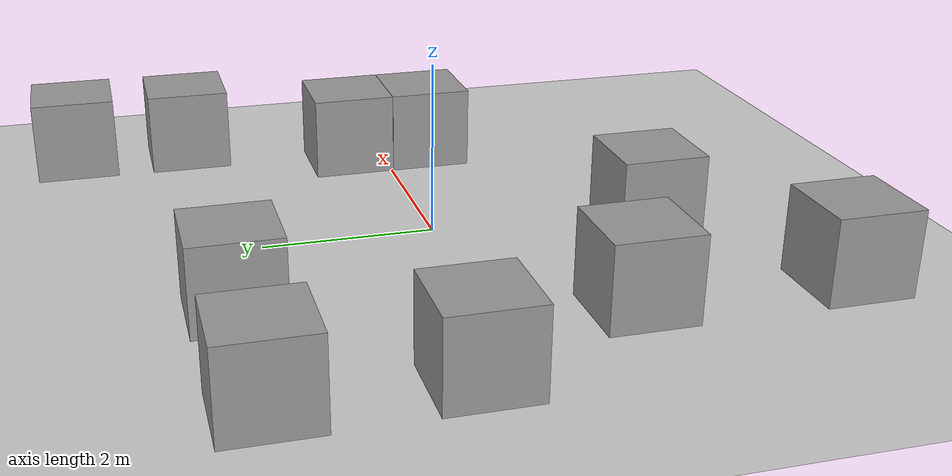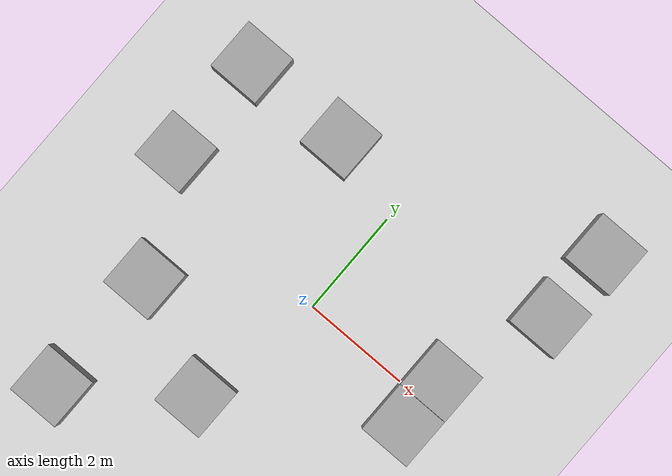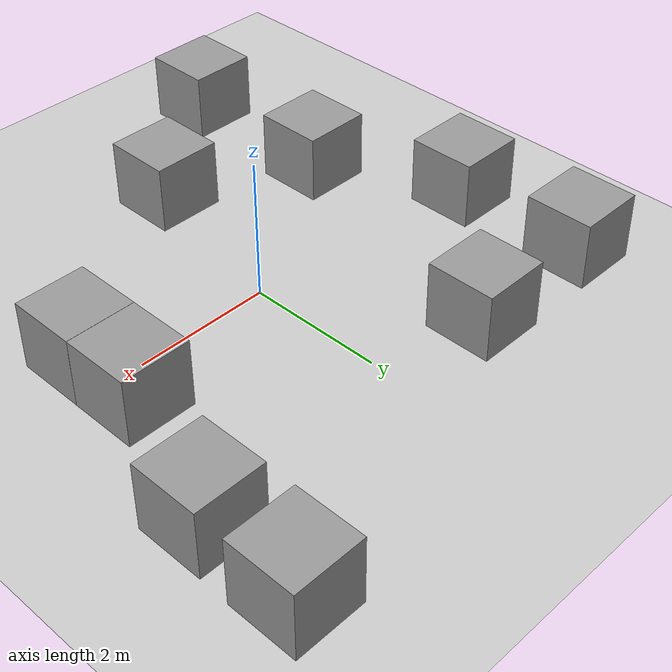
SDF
<sdf version="1.7">
 <world name="default">
  <light name="sun" type="directional">
   <pose>0 0 10 0 -0 0</pose>
   <diffuse>0.8 0.8 0.8 1</diffuse>
   <specular>0.2 0.2 0.2 1</specular>
   <attenuation>
    <range>1000</range>
    <constant>0.9</constant>
    <linear>0.01</linear>
    <quadratic>0.001</quadratic>
   </attenuation>
   <direction>-0.5 0.1 -0.9</direction>
   <spot><inner_angle>0</inner_angle><outer_angle>0</outer_angle><falloff>0</falloff></spot>
  </light>
  <model name="ground_plane">
   <static>1</static>
   <link name="link">
    <collision name="collision">
     <geometry><plane><normal>0 0 1</normal><size>100 100</size></plane></geometry>
     <surface><friction><ode><mu>100</mu><mu2>50</mu2></ode></friction></surface>
    </collision>
    <visual name="visual">
     <cast_shadows>0</cast_shadows>
     <geometry><plane><normal>0 0 1</normal><size>100 100</size></plane></geometry>
     <material>
      <script><uri>file://media/materials/scripts/gazebo.material</uri><name>Gazebo/Grey</name></script>
     </material>
    </visual>
   </link>
  </model>
  <gravity>0 0 -9.8</gravity>
  <magnetic_field>6e-06 2.3e-05 -4.2e-05</magnetic_field>
  <atmosphere type="adiabatic"/>
  <physics name="default_physics" default="0" type="ode">
   <max_step_size>0.001</max_step_size>
   <real_time_factor>1</real_time_factor>
   <real_time_update_rate>1000</real_time_update_rate>
  </physics>
  <scene><ambient>0.4 0.4 0.4 1</ambient><background>0.7 0.7 0.7 1</background><shadows>1</shadows></scene>
  <spherical_coordinates>
   <surface_model>EARTH_WGS84</surface_model>
   <latitude_deg>0</latitude_deg>
   <longitude_deg>0</longitude_deg>
   <elevation>0</elevation>
   <heading_deg>0</heading_deg>
  </spherical_coordinates>
  <model name="unit_box">
   <pose>2.49406 -0.520065 0.499995 1e-05 -0 0</pose>
   <link name="link">
    <inertial>
     <mass>1</mass>
     <inertia>
      <ixx>0.166667</ixx>
      <ixy>0</ixy>
      <ixz>0</ixz>
      <iyy>0.166667</iyy>
      <iyz>0</iyz>
      <izz>0.166667</izz>
     </inertia>
    </inertial>
    <collision name="collision"><geometry><box><size>1 1 1</size></box></geometry></collision>
    <visual name="visual">
     <geometry><box><size>1 1 1</size></box></geometry>
     <material>
      <script><name>Gazebo/Grey</name><uri>file://media/materials/scripts/gazebo.material</uri></script>
     </material>
    </visual>
   </link>
  </model>
  <model name="unit_box_0">
   <pose>2.49558 0.482622 0.499995 0 1e-05 0</pose>
   <link name="link">
    <inertial>
     <mass>1</mass>
     <inertia>
      <ixx>0.166667</ixx>
      <ixy>0</ixy>
      <ixz>0</ixz>
      <iyy>0.166667</iyy>
      <iyz>0</iyz>
      <izz>0.166667</izz>
     </inertia>
    </inertial>
    <collision name="collision"><geometry><box><size>1 1 1</size></box></geometry></collision>
    <visual name="visual">
     <geometry><box><size>1 1 1</size></box></geometry>
     <material>
      <script><name>Gazebo/Grey</name><uri>file://media/materials/scripts/gazebo.material</uri></script>
     </material>
    </visual>
   </link>
  </model>
  <model name="unit_box_1">
   <pose>-0.515914 -2.45519 0.499995 0 1e-05 0</pose>
   <link name="link">
    <inertial>
     <mass>1</mass>
     <inertia>
      <ixx>0.166667</ixx>
      <ixy>0</ixy>
      <ixz>0</ixz>
      <iyy>0.166667</iyy>
      <iyz>0</iyz>
      <izz>0.166667</izz>
     </inertia>
    </inertial>
    <collision name="collision"><geometry><box><size>1 1 1</size></box></geometry></collision>
    <visual name="visual">
     <geometry><box><size>1 1 1</size></box></geometry>
     <material>
      <script><name>Gazebo/Grey</name><uri>file://media/materials/scripts/gazebo.material</uri></script>
     </material>
    </visual>
   </link>
  </model>
  <model name="unit_box_2">
   <pose>-1.50989 2.50869 0.499995 1e-05 -0 0</pose>
   <link name="link">
    <inertial>
     <mass>1</mass>
     <inertia>
      <ixx>0.166667</ixx>
      <ixy>0</ixy>
      <ixz>0</ixz>
      <iyy>0.166667</iyy>
      <iyz>0</iyz>
      <izz>0.166667</izz>
     </inertia>
    </inertial>
    <collision name="collision"><geometry><box><size>1 1 1</size></box></geometry></collision>
    <visual name="visual">
     <geometry><box><size>1 1 1</size></box></geometry>
     <material>
      <script><name>Gazebo/Grey</name><uri>file://media/materials/scripts/gazebo.material</uri></script>
     </material>
    </visual>
   </link>
  </model>
  <model name="unit_box_3">
   <pose>-3.50442 0.498324 0.499995 1e-05 -0 0</pose>
   <link name="link">
    <inertial>
     <mass>1</mass>
     <inertia>
      <ixx>0.166667</ixx>
      <ixy>0</ixy>
      <ixz>0</ixz>
      <iyy>0.166667</iyy>
      <iyz>0</iyz>
      <izz>0.166667</izz>
     </inertia>
    </inertial>
    <collision name="collision"><geometry><box><size>1 1 1</size></box></geometry></collision>
    <visual name="visual">
     <geometry><box><size>1 1 1</size></box></geometry>
     <material>
      <script><name>Gazebo/Grey</name><uri>file://media/materials/scripts/gazebo.material</uri></script>
     </material>
    </visual>
   </link>
  </model>
  <model name="unit_box_4">
   <pose>3.222 3.9531 0.499995 1e-05 -0 0</pose>
   <link name="link">
    <inertial>
     <mass>1</mass>
     <inertia>
      <ixx>0.166667</ixx>
      <ixy>0</ixy>
      <ixz>0</ixz>
      <iyy>0.166667</iyy>
      <iyz>0</iyz>
      <izz>0.166667</izz>
     </inertia>
    </inertial>
    <collision name="collision"><geometry><box><size>1 1 1</size></box></geometry></collision>
    <visual name="visual">
     <geometry><box><size>1 1 1</size></box></geometry>
     <material>
      <script><name>Gazebo/Grey</name><uri>file://media/materials/scripts/gazebo.material</uri></script>
     </material>
    </visual>
   </link>
  </model>
  <model name="unit_box_5">
   <pose>3.20634 2.51403 0.499995 0 1e-05 0</pose>
   <link name="link">
    <inertial>
     <mass>1</mass>
     <inertia>
      <ixx>0.166667</ixx>
      <ixy>0</ixy>
      <ixz>0</ixz>
      <iyy>0.166667</iyy>
      <iyz>0</iyz>
      <izz>0.166667</izz>
     </inertia>
    </inertial>
    <collision name="collision"><geometry><box><size>1 1 1</size></box></geometry></collision>
    <visual name="visual">
     <geometry><box><size>1 1 1</size></box></geometry>
     <material>
      <script><name>Gazebo/Grey</name><uri>file://media/materials/scripts/gazebo.material</uri></script>
     </material>
    </visual>
   </link>
  </model>
  <model name="unit_box_6">
   <pose>-3.5116 2.49831 0.499995 1e-05 -0 0</pose>
   <link name="link">
    <inertial>
     <mass>1</mass>
     <inertia>
      <ixx>0.166667</ixx>
      <ixy>0</ixy>
      <ixz>0</ixz>
      <iyy>0.166667</iyy>
      <iyz>0</iyz>
      <izz>0.166667</izz>
     </inertia>
    </inertial>
    <collision name="collision"><geometry><box><size>1 1 1</size></box></geometry></collision>
    <visual name="visual">
     <geometry><box><size>1 1 1</size></box></geometry>
     <material>
      <script><name>Gazebo/Grey</name><uri>file://media/materials/scripts/gazebo.material</uri></script>
     </material>
    </visual>
   </link>
  </model>
  <model name="unit_box_7">
   <pose>-2.49355 -1.49666 0.499995 0 1e-05 0</pose>
   <link name="link">
    <inertial>
     <mass>1</mass>
     <inertia>
      <ixx>0.166667</ixx>
      <ixy>0</ixy>
      <ixz>0</ixz>
      <iyy>0.166667</iyy>
      <iyz>0</iyz>
      <izz>0.166667</izz>
     </inertia>
    </inertial>
    <collision name="collision"><geometry><box><size>1 1 1</size></box></geometry></collision>
    <visual name="visual">
     <geometry><box><size>1 1 1</size></box></geometry>
     <material>
      <script><name>Gazebo/Grey</name><uri>file://media/materials/scripts/gazebo.material</uri></script>
     </material>
    </visual>
   </link>
  </model>
  <model name="unit_box_8">
   <pose>-2.50073 -3.91824 0.499995 -1e-05 -0 -0</pose>
   <link name="link">
    <inertial>
     <mass>1</mass>
     <inertia>
      <ixx>0.166667</ixx>
      <ixy>0</ixy>
      <ixz>0</ixz>
      <iyy>0.166667</iyy>
      <iyz>0</iyz>
      <izz>0.166667</izz>
     </inertia>
    </inertial>
    <collision name="collision"><geometry><box><size>1 1 1</size></box></geometry></collision>
    <visual name="visual">
     <geometry><box><size>1 1 1</size></box></geometry>
     <material>
      <script><name>Gazebo/Grey</name><uri>file://media/materials/scripts/gazebo.material</uri></script>
     </material>
    </visual>
   </link>
  </model>
 </world>
</sdf>
